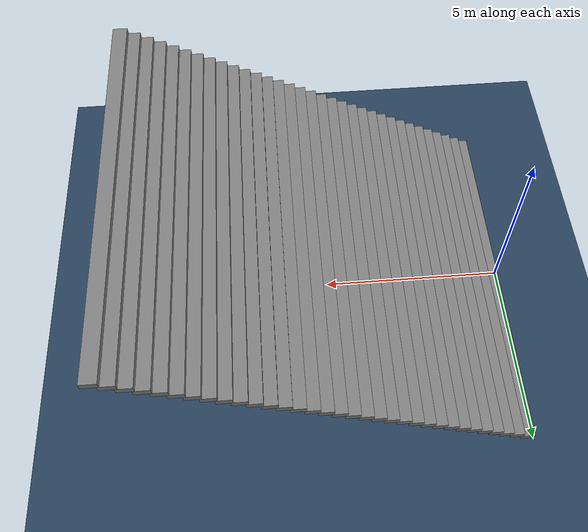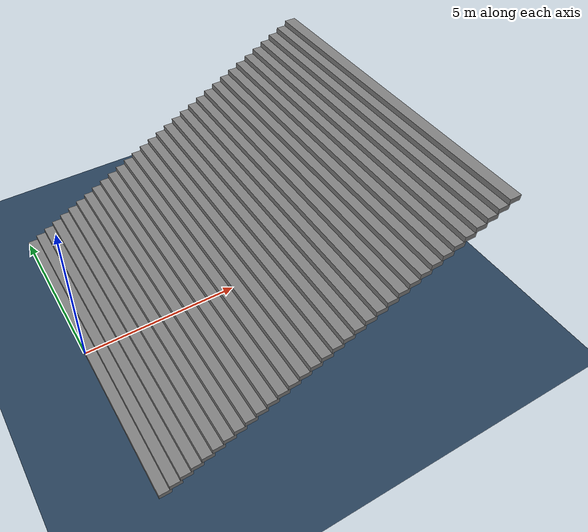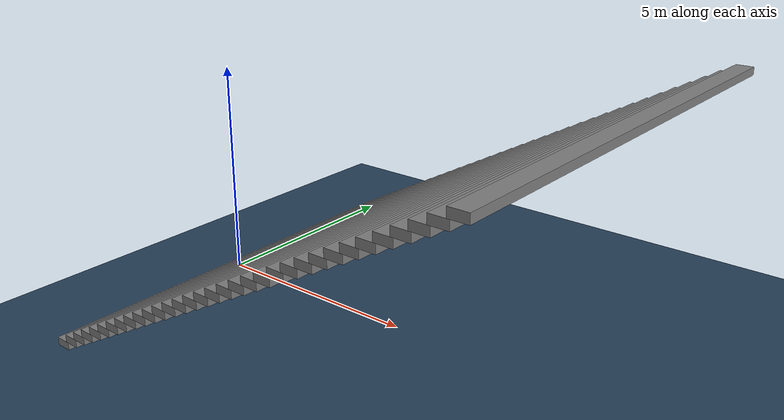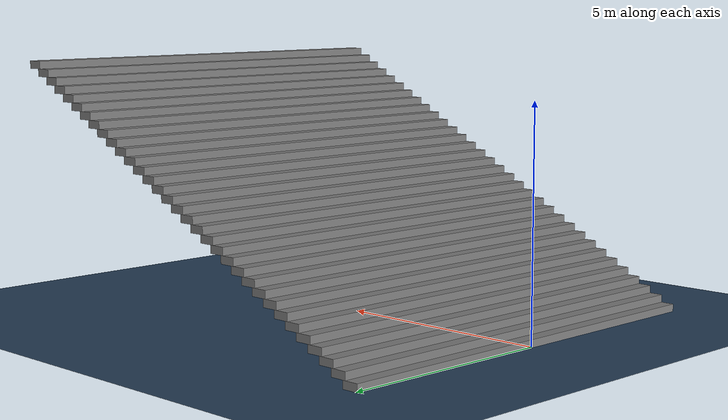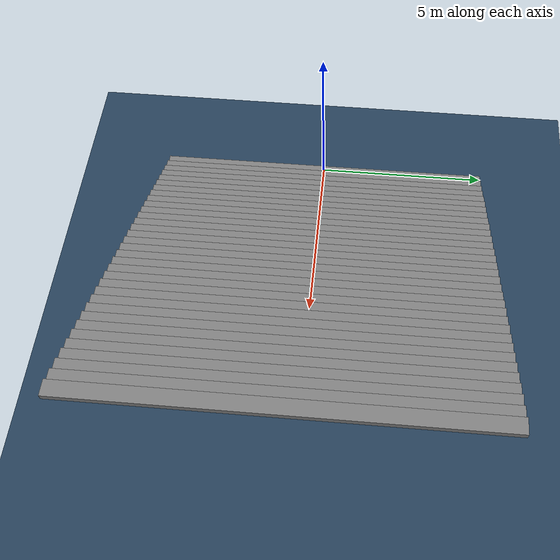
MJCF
<mujoco model="stairs_4">
  <!-- Terrain Type: stairs, Level: 4, Stairs step height: 0.1700 -->
  <statistic center="0 0 0.1" extent="0.8" />
  <visual>
    <headlight diffuse="0.6 0.6 0.6" ambient="0.3 0.3 0.3" specular="0 0 0" />
    <rgba haze="0.15 0.25 0.35 1" />
    <global azimuth="-130" elevation="-20" />
  </visual>
  <asset>
    <texture type="skybox" builtin="gradient" rgb1="0.3 0.5 0.7" rgb2="0 0 0" width="512" height="3072" />
    <texture type="2d" name="groundplane" builtin="checker" mark="edge" rgb1="0.2 0.3 0.4" rgb2="0.1 0.2 0.3" markrgb="0.8 0.8 0.8" width="300" height="300" />
    <material name="groundplane" texture="groundplane" texuniform="true" texrepeat="5 5" reflectance="0.0" />
  </asset>
  <worldbody>
    <light pos="0 0 1.5" dir="0 0 -1" directional="true" />
    <geom name="floor" size="0 0 0.05" type="plane" material="groundplane" />
    <geom pos="0.155 0.0 0.08499999999999999" type="box" size="0.186 5.0 0.08499999999999999" quat="1.0 0.0 0.0 0.0" />
    <geom pos="0.46499999999999997 0.0 0.255" type="box" size="0.186 5.0 0.08499999999999999" quat="1.0 0.0 0.0 0.0" />
    <geom pos="0.7749999999999999 0.0 0.425" type="box" size="0.186 5.0 0.08499999999999999" quat="1.0 0.0 0.0 0.0" />
    <geom pos="1.085 0.0 0.595" type="box" size="0.186 5.0 0.08499999999999999" quat="1.0 0.0 0.0 0.0" />
    <geom pos="1.395 0.0 0.7649999999999999" type="box" size="0.186 5.0 0.08499999999999999" quat="1.0 0.0 0.0 0.0" />
    <geom pos="1.705 0.0 0.9349999999999998" type="box" size="0.186 5.0 0.08499999999999999" quat="1.0 0.0 0.0 0.0" />
    <geom pos="2.015 0.0 1.1049999999999998" type="box" size="0.186 5.0 0.08499999999999999" quat="1.0 0.0 0.0 0.0" />
    <geom pos="2.325 0.0 1.2749999999999997" type="box" size="0.186 5.0 0.08499999999999999" quat="1.0 0.0 0.0 0.0" />
    <geom pos="2.6350000000000002 0.0 1.4449999999999996" type="box" size="0.186 5.0 0.08499999999999999" quat="1.0 0.0 0.0 0.0" />
    <geom pos="2.9450000000000003 0.0 1.6149999999999995" type="box" size="0.186 5.0 0.08499999999999999" quat="1.0 0.0 0.0 0.0" />
    <geom pos="3.2550000000000003 0.0 1.7849999999999995" type="box" size="0.186 5.0 0.08499999999999999" quat="1.0 0.0 0.0 0.0" />
    <geom pos="3.5650000000000004 0.0 1.9549999999999994" type="box" size="0.186 5.0 0.08499999999999999" quat="1.0 0.0 0.0 0.0" />
    <geom pos="3.8750000000000004 0.0 2.1249999999999996" type="box" size="0.186 5.0 0.08499999999999999" quat="1.0 0.0 0.0 0.0" />
    <geom pos="4.1850000000000005 0.0 2.2949999999999995" type="box" size="0.186 5.0 0.08499999999999999" quat="1.0 0.0 0.0 0.0" />
    <geom pos="4.495 0.0 2.4649999999999994" type="box" size="0.186 5.0 0.08499999999999999" quat="1.0 0.0 0.0 0.0" />
    <geom pos="4.805 0.0 2.6349999999999993" type="box" size="0.186 5.0 0.08499999999999999" quat="1.0 0.0 0.0 0.0" />
    <geom pos="5.114999999999999 0.0 2.8049999999999993" type="box" size="0.186 5.0 0.08499999999999999" quat="1.0 0.0 0.0 0.0" />
    <geom pos="5.424999999999999 0.0 2.974999999999999" type="box" size="0.186 5.0 0.08499999999999999" quat="1.0 0.0 0.0 0.0" />
    <geom pos="5.7349999999999985 0.0 3.144999999999999" type="box" size="0.186 5.0 0.08499999999999999" quat="1.0 0.0 0.0 0.0" />
    <geom pos="6.044999999999998 0.0 3.314999999999999" type="box" size="0.186 5.0 0.08499999999999999" quat="1.0 0.0 0.0 0.0" />
    <geom pos="6.354999999999998 0.0 3.484999999999999" type="box" size="0.186 5.0 0.08499999999999999" quat="1.0 0.0 0.0 0.0" />
    <geom pos="6.664999999999997 0.0 3.654999999999999" type="box" size="0.186 5.0 0.08499999999999999" quat="1.0 0.0 0.0 0.0" />
    <geom pos="6.974999999999997 0.0 3.824999999999999" type="box" size="0.186 5.0 0.08499999999999999" quat="1.0 0.0 0.0 0.0" />
    <geom pos="7.284999999999997 0.0 3.9949999999999988" type="box" size="0.186 5.0 0.08499999999999999" quat="1.0 0.0 0.0 0.0" />
    <geom pos="7.594999999999996 0.0 4.164999999999999" type="box" size="0.186 5.0 0.08499999999999999" quat="1.0 0.0 0.0 0.0" />
    <geom pos="7.904999999999996 0.0 4.334999999999999" type="box" size="0.186 5.0 0.08499999999999999" quat="1.0 0.0 0.0 0.0" />
    <geom pos="8.214999999999996 0.0 4.504999999999999" type="box" size="0.186 5.0 0.08499999999999999" quat="1.0 0.0 0.0 0.0" />
    <geom pos="8.524999999999997 0.0 4.674999999999999" type="box" size="0.186 5.0 0.08499999999999999" quat="1.0 0.0 0.0 0.0" />
    <geom pos="8.834999999999997 0.0 4.844999999999999" type="box" size="0.186 5.0 0.08499999999999999" quat="1.0 0.0 0.0 0.0" />
    <geom pos="9.144999999999998 0.0 5.014999999999999" type="box" size="0.186 5.0 0.08499999999999999" quat="1.0 0.0 0.0 0.0" />
    <geom pos="9.454999999999998 0.0 5.184999999999999" type="box" size="0.186 5.0 0.08499999999999999" quat="1.0 0.0 0.0 0.0" />
    <geom pos="9.764999999999999 0.0 5.354999999999999" type="box" size="0.186 5.0 0.08499999999999999" quat="1.0 0.0 0.0 0.0" />
    <geom pos="10.075 0.0 5.524999999999999" type="box" size="0.186 5.0 0.08499999999999999" quat="1.0 0.0 0.0 0.0" />
  </worldbody>
</mujoco>
